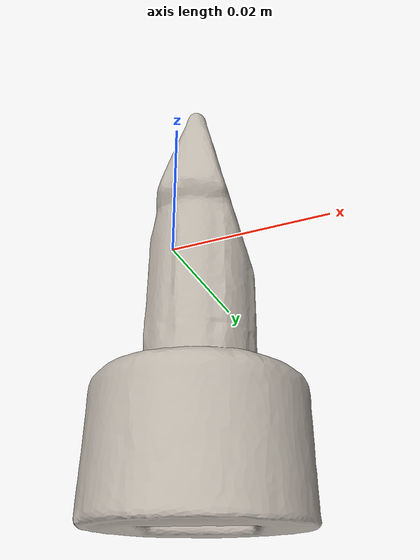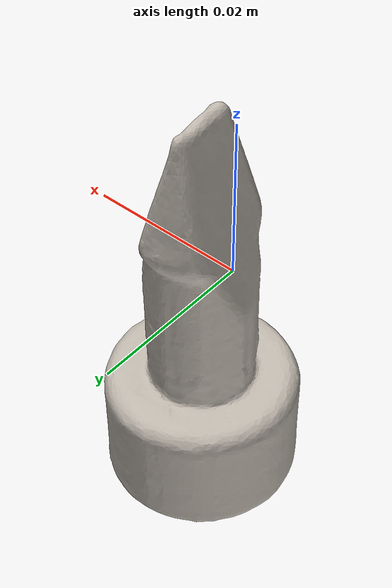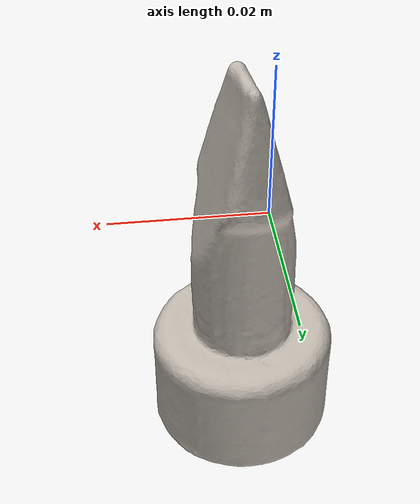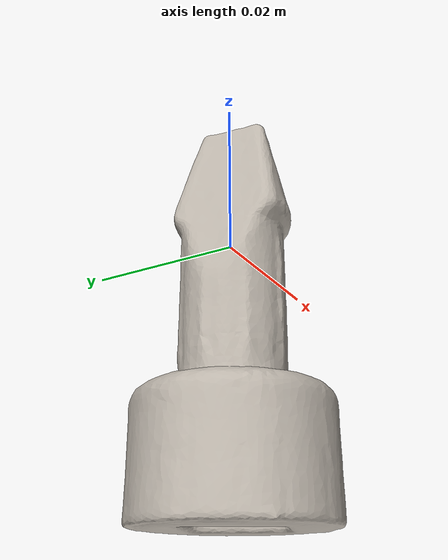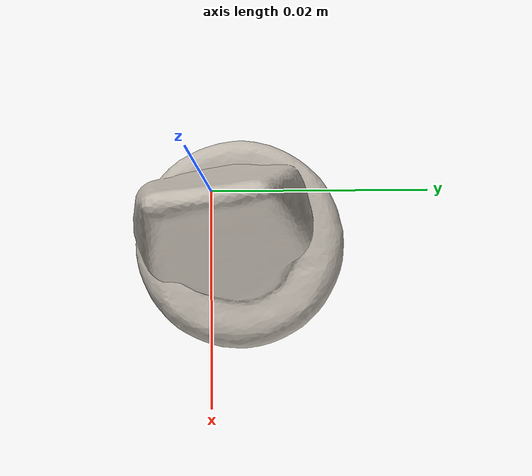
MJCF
<mujoco model="bread">
  <asset>
    <mesh file="nontextured.stl" name="obj_mesh" scale="0.8 0.8 0.8"/>
    <texture file="../../../../../textures/bread.png" type="2d" name="tex-bread" />
    <material name="bread" reflectance="0.7" texrepeat="15 15" texture="tex-bread" texuniform="true"/>
  </asset>
  <worldbody>
    <body>
      <body name="collision">
        <geom pos="0.015563 0.007709000000000001 -0.0330245" mesh="obj_mesh" type="mesh" solimp="0.998 0.998 0.001" solref="0.001 1" density="50" friction="0.95 0.3 0.1"  material="bread" group="1" condim="4"/>
      </body>
      <body name="visual">
        <geom pos="0.015563 0.007709000000000001 -0.0330245" mesh="obj_mesh" type="mesh" material="bread"  conaffinity="0" contype="0"  group="0" mass="0.0001"/>
        <geom pos="0.015563 0.007709000000000001 -0.0330245" mesh="obj_mesh" type="mesh" material="bread"  conaffinity="0" contype="0"  group="1" mass="0.0001"/>
      </body>
      <site rgba="0 0 0 0" size="0.005" pos="0 0 -0.0330785" name="bottom_site"/>
      <site rgba="0 0 0 0" size="0.005" pos="0 0 0.0330785" name="top_site"/>
      <site rgba="0 0 0 0" size="0.005" pos="0.015379 0.015392 0.0330785" name="horizontal_radius_site"/>
    </body>
  </worldbody>
</mujoco>
